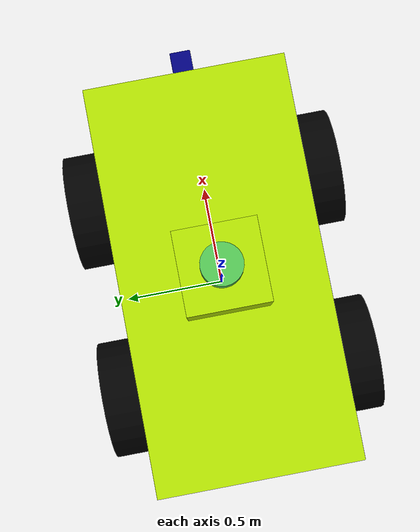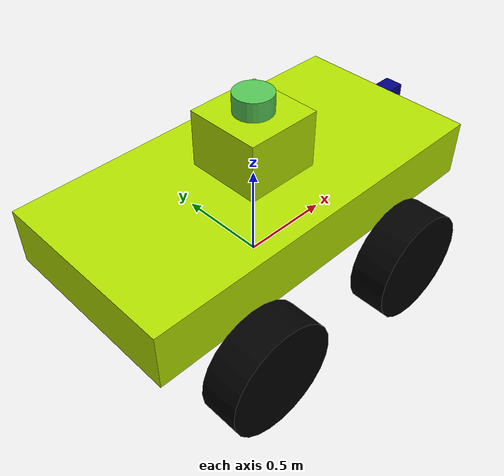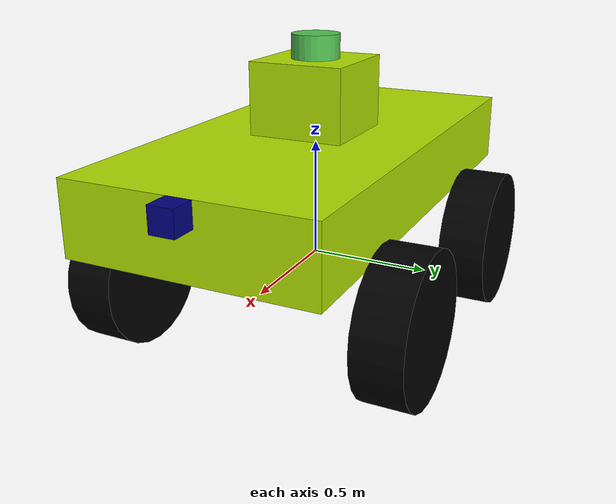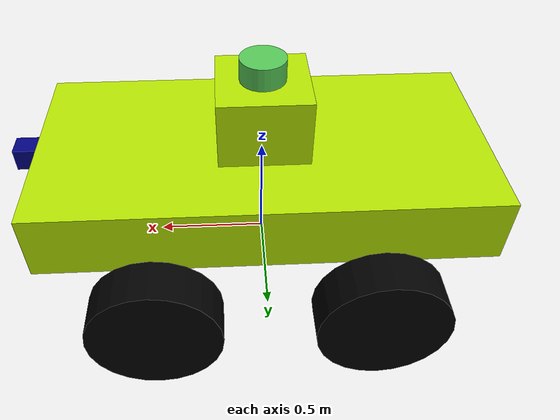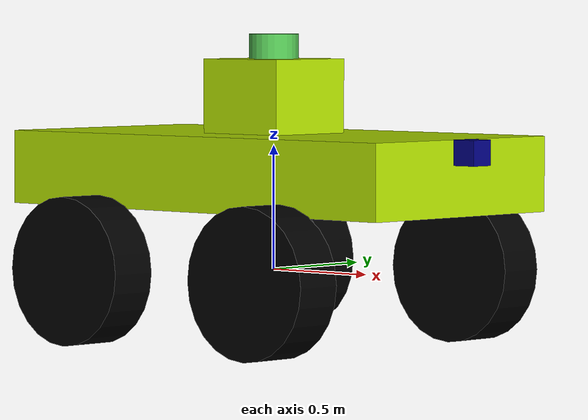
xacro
<?xml version="1.0"?>
<robot xmlns:xacro="http://www.ros.org/wiki/xacro" name="okasha">
    <xacro:include filename="inertial_macros.xacro"/>
    <xacro:include filename="chasis.xacro"/>
    <xacro:include filename="wheel.xacro"/>
    <xacro:include filename="lidar.xacro"/>
    <xacro:include filename="camera.xacro"/>
    <xacro:include filename="lidar_base.xacro"/>

    <xacro:camera_link name="camera"/>
    <xacro:chasis_link name="chasis"/>
    <xacro:lidar_base_link name= "lidar_base"/>
    <xacro:lidar_link name="lidar"/>
    <xacro:wheel_link name="wheel_one"/>
    <xacro:wheel_link name="wheel_two"/>
    <xacro:wheel_link name="wheel_three"/>
    <xacro:wheel_link name="wheel_four"/>
    <link name="dummy">
    </link>
    <joint name="dummy_joint" type="fixed">
        <parent link="dummy"/>
        <child link="chasis"/>
    </joint>
    <joint name="chasis_camera" type="fixed">
        <parent link="chasis"/>
        <child link="camera"/>
        <origin xyz="1.05 0.0 -0.1" rpy="0.0 0.0 0.0"/>
    </joint>
    <joint name="chasis_lidar_base" type="fixed">
        <parent link="chasis"/>
        <child link="lidar_base"/>
        <origin xyz="0.0 0.0 0.1" rpy="0.0 0.0 0.0"/>
    </joint>
    <joint name="lidar_base_lidar" type="fixed">
        <parent link="lidar_base"/>
        <child link="lidar"/>
        <origin xyz="0.0 0.0 0.2" rpy="0.0 0.0 0.0"/>
    </joint>
    <joint name="chasis_wheel_one" type="continuous">
        <parent link="chasis"/>
        <child link="wheel_one"/>
        <axis xyz="0.0 1.0 0.0"/>
        <origin xyz="0.5 0.6 0" rpy="0 0 0"/>
    </joint>
    <joint name="chasis_wheel_two" type="continuous">
        <parent link="chasis"/>
        <child link="wheel_two"/>
        <axis xyz="0.0 1.0 0.0"/>
        <origin xyz="0.5 -0.6 0" rpy="0 0 0"/>
    </joint>
    <joint name="chasis_wheel_three" type="continuous">
        <parent link="chasis"/>
        <child link="wheel_three"/>
        <axis xyz="0.0 1.0 0.0"/>
        <origin xyz="-0.5 0.6 0" rpy="0 0 0"/>
    </joint>
    <joint name="chasis_wheel_four" type="continuous">
        <parent link="chasis"/>
        <child link="wheel_four"/>
        <axis xyz="0.0 1.0 0.0"/>
        <origin xyz="-0.5 -0.6 0" rpy="0 0 0"/>
    </joint>

</robot>

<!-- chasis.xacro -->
<robot xmlns:xacro="http://www.ros.org/wiki/xacro">
    <xacro:include filename="inertial_macros.xacro"/>
    <material name="cyellow">
        <color rgba="0.7 0.88 0.0 1.0"/>
    </material>
    <xacro:macro name="chasis_link" params="name">
        <link name="${name}">
            <visual name="${name}_visual">
                <origin xyz="0.0 0.0 0.4" rpy="0.0 0.0 0.0"/>
                <geometry>
                    <box size="2.0 1.0 0.3"/>
                </geometry>
                <material name="cyellow"/>
            </visual>
            <collision>
                <origin xyz="0.0 0.0 0.4" rpy="0.0 0.0 0.0"/>
                <geometry>
                    <box size="2.0 1.0 0.3"/>
                </geometry>
            </collision>
            <xacro:inertial_box mass="20" x="2.0" y="1.0" z="0.3">
                <origin xyz="0.0 0.0 0.4" rpy="0.0 0.0 0.0"/>
            </xacro:inertial_box>
        </link>
    </xacro:macro>

</robot>

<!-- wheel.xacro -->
<robot xmlns:xacro="http://www.ros.org/wiki/xacro">
    <xacro:include filename="inertial_macros.xacro"/>
    <material name="black">
        <color rgba="0.0 0.0 0.0 1.0"/>
    </material>
    <xacro:macro name="wheel_link" params="name">
        <link name="${name}">

            <visual name="${name}_visual">
                <origin xyz="0.0 0.0 0.0" rpy="0.0 1.5707 1.5707"/>
                <geometry>
                    <cylinder radius="0.3" length="0.2"/>
                </geometry>
                <material name="black"/>
            </visual>
            <collision>
                <origin xyz="0.0 0.0 0.0" rpy="0.0 1.5707 1.5707"/>
                <geometry>
                    <cylinder radius="0.3" length="0.2"/>>
                </geometry>
            </collision>
            <inertial>
	      <mass value="1.0"/>
	      <origin rpy="0 0 0" xyz="0 0 0"/>
	      <inertia ixx="0.1" ixy="0" ixz="0" iyy="0.1" iyz="0" izz="0.1"/>
	    </inertial>
        </link>
    </xacro:macro>

</robot>

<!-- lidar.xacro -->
<robot xmlns:xacro="http://www.ros.org/wiki/xacro">
    <xacro:include filename="inertial_macros.xacro"/>
    <material name="green">
        <color rgba="0.33 0.77 0.33 1.0"/>
    </material>
    <xacro:macro name="lidar_link" params="name">
        <link name="${name}">
            <visual name="${name}_visual">
                <origin xyz="0.0 0.0 0.6" rpy="0.0 0.0 0.0"/>
                <geometry>
                    <cylinder radius="0.1" length="0.1"/>
                </geometry>
                <material name="green"/>
            </visual>
            <collision>
                <origin xyz="0.0 0.0 0.6" rpy="0.0 0.0 0.0"/>
                <geometry>
                    <cylinder radius="0.1" length="0.1"/>
                </geometry>
            </collision>
            <xacro:inertial_cylinder mass="0.7" length="0.1" radius="0.1">
                <origin xyz="0.0 0.0 0.6" rpy="0.0 0.0 0.0"/>
            </xacro:inertial_cylinder>
        </link>
    </xacro:macro>
</robot>

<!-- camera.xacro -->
<robot xmlns:xacro="http://www.ros.org/wiki/xacro">
    <xacro:include filename="inertial_macros.xacro"/>
    <material name="blue">
        <color rgba="0.0 0.0 0.5 1.0"/>
    </material>
    <xacro:macro name="camera_link" params="name">
        <link name="${name}">
            <visual name="${name}_visual">
                <origin xyz="0.0 0.0 0.6" rpy="0.0 0.0 0.0"/>
                <geometry>
                    <box size="0.1 0.1 0.1"/>
                </geometry>
                <material name="blue"/>
            </visual>
            <collision>
                <origin xyz="0.0 0.0 0.6" rpy="0.0 0.0 0.0"/>
                <geometry>
                    <box size="0.1 0.1 0.1"/>
                </geometry>
            </collision>
            <xacro:inertial_box mass="0.3" x="0.1" y="0.1" z="0.1">
                <origin xyz="0.0 0.0 0.6" rpy="0.0 0.0 0.0"/>
            </xacro:inertial_box>
        </link>
    </xacro:macro>

</robot>

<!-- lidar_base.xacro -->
<robot xmlns:xacro="http://www.ros.org/wiki/xacro">
    <xacro:include filename="inertial_macros.xacro"/>
    <material name="lyellow">
        <color rgba="0.7 0.88 0.0 1.0"/>
    </material>
    <xacro:macro name="lidar_base_link" params="name">
        <link name="${name}">
            <visual name="${name}_visual">
                <origin xyz="0.0 0.0 0.6" rpy="0.0 0.0 0.0"/>
                <geometry>
                    <box size="0.4 0.4 0.3"/>
                </geometry>
                <material name="lyellow"/>
            </visual>
            <collision>
                <origin xyz="0.0 0.0 0.6" rpy="0.0 0.0 0.0"/>
                <geometry>
                    <box size="0.4 0.4 0.3"/>
                </geometry>
            </collision>
            <xacro:inertial_box mass="0.25" x="0.4" y="0.4" z="0.3">
                <origin xyz="0.0 0.0 0.6" rpy="0.0 0.0 0.0"/>
            </xacro:inertial_box>
        </link>
    </xacro:macro>
</robot>
